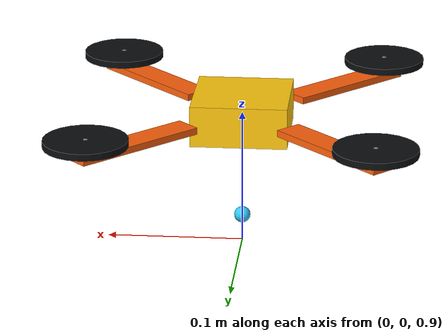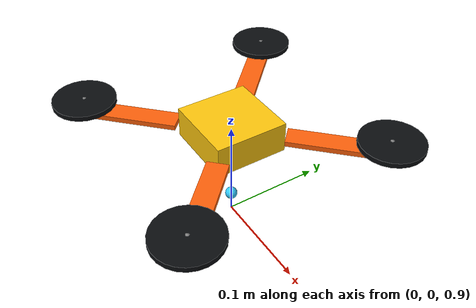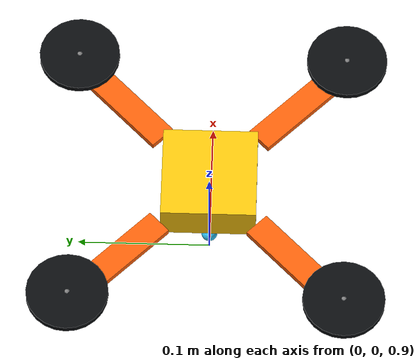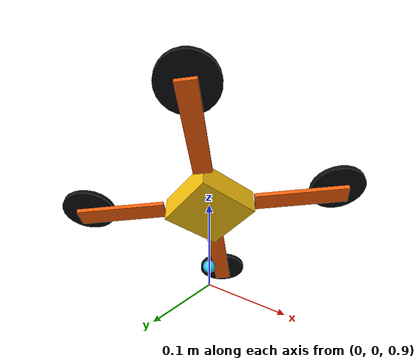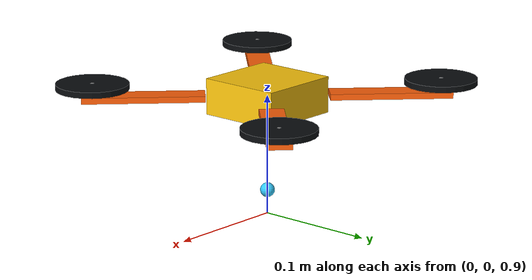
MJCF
<mujoco model="flare_acp_quadrotor">
  <compiler angle="radian" autolimits="true"/>
  <worldbody>
    <body name="quadrotor" pos="0 0 1">
      <freejoint name="quadrotor_free"/>
      <geom name="core" type="box" size="0.035 0.035 0.015" rgba="1 0.78 0.05 1" mass="0.85"/>
      <geom name="arm_front_left" type="box" pos="0.071 0.071 0" size="0.05 0.01 0.0025"
        quat="0.92388 0 0 0.382683" rgba="1 0.38 0.04 1" mass="0.035"/>
      <geom name="arm_front_right" type="box" pos="0.071 -0.071 0" size="0.05 0.01 0.0025"
        quat="0.382683 0 0 0.92388" rgba="1 0.38 0.04 1" mass="0.035"/>
      <geom name="arm_rear_right" type="box" pos="-0.071 -0.071 0" size="0.05 0.01 0.0025"
        quat="-0.382683 0 0 0.92388" rgba="1 0.38 0.04 1" mass="0.035"/>
      <geom name="arm_rear_left" type="box" pos="-0.071 0.071 0" size="0.05 0.01 0.0025"
        quat="0.92388 0 0 -0.382683" rgba="1 0.38 0.04 1" mass="0.035"/>
      <geom name="rotor_front_left" type="cylinder" pos="0.1 0.1 0.01" size="0.03 0.0025"
        rgba="0.04 0.05 0.06 1" mass="0.015"/>
      <geom name="rotor_front_right" type="cylinder" pos="0.1 -0.1 0.01" size="0.03 0.0025"
        rgba="0.04 0.05 0.06 1" mass="0.015"/>
      <geom name="rotor_rear_right" type="cylinder" pos="-0.1 -0.1 0.01" size="0.03 0.0025"
        rgba="0.04 0.05 0.06 1" mass="0.015"/>
      <geom name="rotor_rear_left" type="cylinder" pos="-0.1 0.1 0.01" size="0.03 0.0025"
        rgba="0.04 0.05 0.06 1" mass="0.015"/>
      <site name="motor_1_rear_right" pos="-0.1 -0.1 0.01" size="0.003"/>
      <site name="motor_2_front_right" pos="0.1 -0.1 0.01" size="0.003"/>
      <site name="motor_3_rear_left" pos="-0.1 0.1 0.01" size="0.003"/>
      <site name="motor_4_front_left" pos="0.1 0.1 0.01" size="0.003"/>
      <site name="payload_attachment" pos="0 0 -0.08" size="0.006" rgba="0.2 0.8 1 1"/>
      <site name="imu" pos="0 0 0" size="0.004"/>
    </body>
  </worldbody>
  <actuator>
    <motor name="motor_1" site="motor_1_rear_right" gear="0 0 1 0 0 0.012" ctrlrange="0 20.5"/>
    <motor name="motor_2" site="motor_2_front_right" gear="0 0 1 0 0 -0.012" ctrlrange="0 20.5"/>
    <motor name="motor_3" site="motor_3_rear_left" gear="0 0 1 0 0 -0.012" ctrlrange="0 20.5"/>
    <motor name="motor_4" site="motor_4_front_left" gear="0 0 1 0 0 0.012" ctrlrange="0 20.5"/>
  </actuator>
</mujoco>
